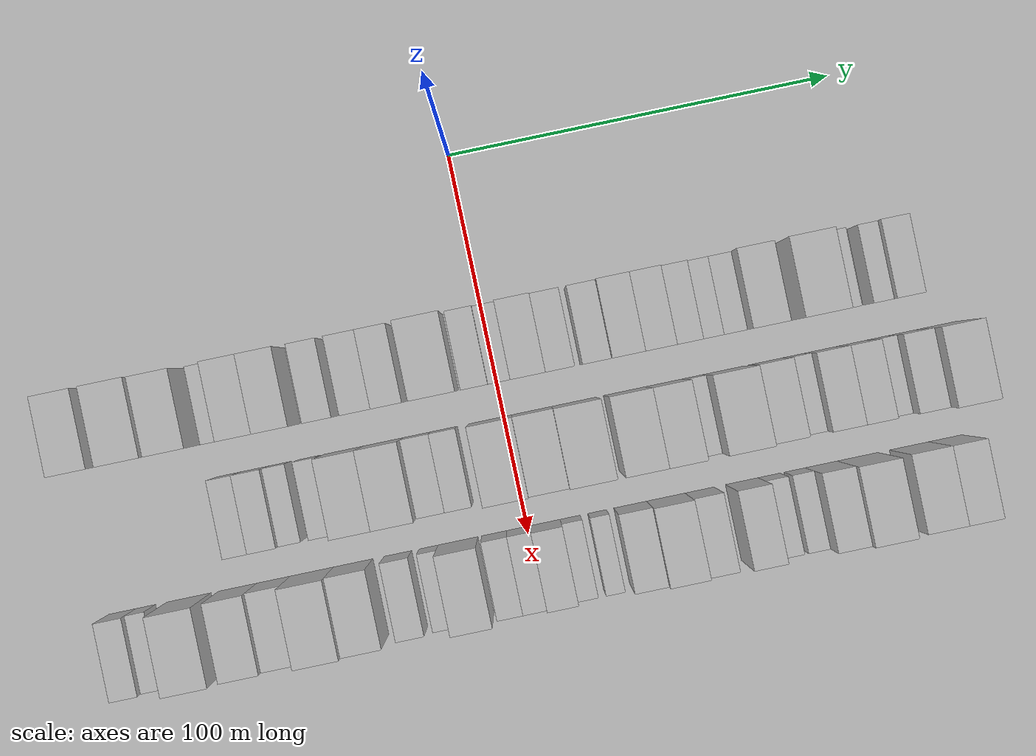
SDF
<sdf version="1.6">
 <world name="default">
  <include><name>ground_plane_1</name><uri>model://HANNAS_ground_plane</uri></include>
  <include>
   <name>ground_plane_2</name>
   <uri>model://HANNAS_ground_plane</uri>
   <pose>100 0 0  0 0 0</pose>
  </include>
  <model name="building_27">
   <static>1</static>
   <pose>50.0000 -106.2114 0 0.000000 0.000000 0.000000</pose>
   <link name="link">
    <pose>0 0 12.00 0 0 0</pose>
    <collision name="collision"><geometry><box><size>20.0000 10.0640 24.0000</size></box></geometry></collision>
    <visual name="visual">
     <cast_shadows>0</cast_shadows>
     <geometry><box><size>20.0000 10.0640 24.0000</size></box></geometry>
     <material>
      <script>
       <uri>model://HANNAS_wall/materials/scripts</uri>
       <uri>model://HANNAS_wall/materials/textures</uri>
       <name>vrc/HANNAS_wall</name>
      </script>
     </material>
    </visual>
   </link>
  </model>
  <model name="building_28">
   <static>1</static>
   <pose>50.0000 -93.5973 0 0.000000 0.000000 0.000000</pose>
   <link name="link">
    <pose>0 0 12.00 0 0 0</pose>
    <collision name="collision"><geometry><box><size>20.0000 11.1640 24.0000</size></box></geometry></collision>
    <visual name="visual">
     <cast_shadows>0</cast_shadows>
     <geometry><box><size>20.0000 11.1640 24.0000</size></box></geometry>
     <material>
      <script>
       <uri>model://HANNAS_wall/materials/scripts</uri>
       <uri>model://HANNAS_wall/materials/textures</uri>
       <name>vrc/HANNAS_wall</name>
      </script>
     </material>
    </visual>
   </link>
  </model>
  <model name="building_29">
   <static>1</static>
   <pose>50.0000 -82.8257 0 0.000000 0.000000 0.000000</pose>
   <link name="link">
    <pose>0 0 10.50 0 0 0</pose>
    <collision name="collision"><geometry><box><size>20.0000 10.3791 21.0000</size></box></geometry></collision>
    <visual name="visual">
     <cast_shadows>0</cast_shadows>
     <geometry><box><size>20.0000 10.3791 21.0000</size></box></geometry>
     <material>
      <script>
       <uri>model://HANNAS_wall/materials/scripts</uri>
       <uri>model://HANNAS_wall/materials/textures</uri>
       <name>vrc/HANNAS_wall</name>
      </script>
     </material>
    </visual>
   </link>
  </model>
  <model name="building_30">
   <static>1</static>
   <pose>50.0000 -72.8177 0 0.000000 0.000000 0.000000</pose>
   <link name="link">
    <pose>0 0 6.00 0 0 0</pose>
    <collision name="collision"><geometry><box><size>20.0000 5.6370 12.0000</size></box></geometry></collision>
    <visual name="visual">
     <cast_shadows>0</cast_shadows>
     <geometry><box><size>20.0000 5.6370 12.0000</size></box></geometry>
     <material>
      <script>
       <uri>model://HANNAS_wall/materials/scripts</uri>
       <uri>model://HANNAS_wall/materials/textures</uri>
       <name>vrc/HANNAS_wall</name>
      </script>
     </material>
    </visual>
   </link>
  </model>
  <model name="building_31">
   <static>1</static>
   <pose>50.0000 -65.4718 0 0.000000 0.000000 0.000000</pose>
   <link name="link">
    <pose>0 0 10.50 0 0 0</pose>
    <collision name="collision"><geometry><box><size>20.0000 9.0548 21.0000</size></box></geometry></collision>
    <visual name="visual">
     <cast_shadows>0</cast_shadows>
     <geometry><box><size>20.0000 9.0548 21.0000</size></box></geometry>
     <material>
      <script>
       <uri>model://HANNAS_wall/materials/scripts</uri>
       <uri>model://HANNAS_wall/materials/textures</uri>
       <name>vrc/HANNAS_wall</name>
      </script>
     </material>
    </visual>
   </link>
  </model>
  <model name="building_32">
   <static>1</static>
   <pose>50.0000 -56.3522 0 0.000000 0.000000 0.000000</pose>
   <link name="link">
    <pose>0 0 10.50 0 0 0</pose>
    <collision name="collision"><geometry><box><size>20.0000 9.1843 21.0000</size></box></geometry></collision>
    <visual name="visual">
     <cast_shadows>0</cast_shadows>
     <geometry><box><size>20.0000 9.1843 21.0000</size></box></geometry>
     <material>
      <script>
       <uri>model://HANNAS_wall/materials/scripts</uri>
       <uri>model://HANNAS_wall/materials/textures</uri>
       <name>vrc/HANNAS_wall</name>
      </script>
     </material>
    </visual>
   </link>
  </model>
  <model name="building_33">
   <static>1</static>
   <pose>50.0000 -45.0540 0 0.000000 0.000000 0.000000</pose>
   <link name="link">
    <pose>0 0 9.00 0 0 0</pose>
    <collision name="collision"><geometry><box><size>20.0000 7.4122 18.0000</size></box></geometry></collision>
    <visual name="visual">
     <cast_shadows>0</cast_shadows>
     <geometry><box><size>20.0000 7.4122 18.0000</size></box></geometry>
     <material>
      <script>
       <uri>model://HANNAS_wall/materials/scripts</uri>
       <uri>model://HANNAS_wall/materials/textures</uri>
       <name>vrc/HANNAS_wall</name>
      </script>
     </material>
    </visual>
   </link>
  </model>
  <model name="building_34">
   <static>1</static>
   <pose>50.0000 -35.4445 0 0.000000 0.000000 0.000000</pose>
   <link name="link">
    <pose>0 0 9.00 0 0 0</pose>
    <collision name="collision"><geometry><box><size>20.0000 7.8068 18.0000</size></box></geometry></collision>
    <visual name="visual">
     <cast_shadows>0</cast_shadows>
     <geometry><box><size>20.0000 7.8068 18.0000</size></box></geometry>
     <material>
      <script>
       <uri>model://HANNAS_wall/materials/scripts</uri>
       <uri>model://HANNAS_wall/materials/textures</uri>
       <name>vrc/HANNAS_wall</name>
      </script>
     </material>
    </visual>
   </link>
  </model>
  <model name="building_35">
   <static>1</static>
   <pose>50.0000 -27.5929 0 0.000000 0.000000 0.000000</pose>
   <link name="link">
    <pose>0 0 9.00 0 0 0</pose>
    <collision name="collision"><geometry><box><size>20.0000 7.8964 18.0000</size></box></geometry></collision>
    <visual name="visual">
     <cast_shadows>0</cast_shadows>
     <geometry><box><size>20.0000 7.8964 18.0000</size></box></geometry>
     <material>
      <script>
       <uri>model://HANNAS_wall/materials/scripts</uri>
       <uri>model://HANNAS_wall/materials/textures</uri>
       <name>vrc/HANNAS_wall</name>
      </script>
     </material>
    </visual>
   </link>
  </model>
  <model name="building_36">
   <static>1</static>
   <pose>50.0000 -15.8348 0 0.000000 0.000000 0.000000</pose>
   <link name="link">
    <pose>0 0 12.00 0 0 0</pose>
    <collision name="collision"><geometry><box><size>20.0000 11.6198 24.0000</size></box></geometry></collision>
    <visual name="visual">
     <cast_shadows>0</cast_shadows>
     <geometry><box><size>20.0000 11.6198 24.0000</size></box></geometry>
     <material>
      <script>
       <uri>model://HANNAS_wall/materials/scripts</uri>
       <uri>model://HANNAS_wall/materials/textures</uri>
       <name>vrc/HANNAS_wall</name>
      </script>
     </material>
    </visual>
   </link>
  </model>
  <model name="building_37">
   <static>1</static>
   <pose>50.0000 -5.5532 0 0.000000 0.000000 0.000000</pose>
   <link name="link">
    <pose>0 0 7.50 0 0 0</pose>
    <collision name="collision"><geometry><box><size>20.0000 6.9434 15.0000</size></box></geometry></collision>
    <visual name="visual">
     <cast_shadows>0</cast_shadows>
     <geometry><box><size>20.0000 6.9434 15.0000</size></box></geometry>
     <material>
      <script>
       <uri>model://HANNAS_wall/materials/scripts</uri>
       <uri>model://HANNAS_wall/materials/textures</uri>
       <name>vrc/HANNAS_wall</name>
      </script>
     </material>
    </visual>
   </link>
  </model>
  <model name="building_38">
   <static>1</static>
   <pose>50.0000 0.7761 0 0.000000 0.000000 0.000000</pose>
   <link name="link">
    <pose>0 0 6.00 0 0 0</pose>
    <collision name="collision"><geometry><box><size>20.0000 5.7152 12.0000</size></box></geometry></collision>
    <visual name="visual">
     <cast_shadows>0</cast_shadows>
     <geometry><box><size>20.0000 5.7152 12.0000</size></box></geometry>
     <material>
      <script>
       <uri>model://HANNAS_wall/materials/scripts</uri>
       <uri>model://HANNAS_wall/materials/textures</uri>
       <name>vrc/HANNAS_wall</name>
      </script>
     </material>
    </visual>
   </link>
  </model>
  <model name="building_39">
   <static>1</static>
   <pose>50.0000 8.0830 0 0.000000 0.000000 0.000000</pose>
   <link name="link">
    <pose>0 0 9.00 0 0 0</pose>
    <collision name="collision"><geometry><box><size>20.0000 8.8988 18.0000</size></box></geometry></collision>
    <visual name="visual">
     <cast_shadows>0</cast_shadows>
     <geometry><box><size>20.0000 8.8988 18.0000</size></box></geometry>
     <material>
      <script>
       <uri>model://HANNAS_wall/materials/scripts</uri>
       <uri>model://HANNAS_wall/materials/textures</uri>
       <name>vrc/HANNAS_wall</name>
      </script>
     </material>
    </visual>
   </link>
  </model>
  <model name="building_40">
   <static>1</static>
   <pose>50.0000 16.2663 0 0.000000 0.000000 0.000000</pose>
   <link name="link">
    <pose>0 0 7.50 0 0 0</pose>
    <collision name="collision"><geometry><box><size>20.0000 7.4677 15.0000</size></box></geometry></collision>
    <visual name="visual">
     <cast_shadows>0</cast_shadows>
     <geometry><box><size>20.0000 7.4677 15.0000</size></box></geometry>
     <material>
      <script>
       <uri>model://HANNAS_wall/materials/scripts</uri>
       <uri>model://HANNAS_wall/materials/textures</uri>
       <name>vrc/HANNAS_wall</name>
      </script>
     </material>
    </visual>
   </link>
  </model>
  <model name="building_41">
   <static>1</static>
   <pose>50.0000 25.6822 0 0.000000 0.000000 0.000000</pose>
   <link name="link">
    <pose>0 0 7.50 0 0 0</pose>
    <collision name="collision"><geometry><box><size>20.0000 7.3641 15.0000</size></box></geometry></collision>
    <visual name="visual">
     <cast_shadows>0</cast_shadows>
     <geometry><box><size>20.0000 7.3641 15.0000</size></box></geometry>
     <material>
      <script>
       <uri>model://HANNAS_wall/materials/scripts</uri>
       <uri>model://HANNAS_wall/materials/textures</uri>
       <name>vrc/HANNAS_wall</name>
      </script>
     </material>
    </visual>
   </link>
  </model>
  <model name="building_42">
   <static>1</static>
   <pose>50.0000 33.5626 0 0.000000 0.000000 0.000000</pose>
   <link name="link">
    <pose>0 0 9.00 0 0 0</pose>
    <collision name="collision"><geometry><box><size>20.0000 8.3966 18.0000</size></box></geometry></collision>
    <visual name="visual">
     <cast_shadows>0</cast_shadows>
     <geometry><box><size>20.0000 8.3966 18.0000</size></box></geometry>
     <material>
      <script>
       <uri>model://HANNAS_wall/materials/scripts</uri>
       <uri>model://HANNAS_wall/materials/textures</uri>
       <name>vrc/HANNAS_wall</name>
      </script>
     </material>
    </visual>
   </link>
  </model>
  <model name="building_43">
   <static>1</static>
   <pose>50.0000 41.7393 0 0.000000 0.000000 0.000000</pose>
   <link name="link">
    <pose>0 0 9.00 0 0 0</pose>
    <collision name="collision"><geometry><box><size>20.0000 7.9568 18.0000</size></box></geometry></collision>
    <visual name="visual">
     <cast_shadows>0</cast_shadows>
     <geometry><box><size>20.0000 7.9568 18.0000</size></box></geometry>
     <material>
      <script>
       <uri>model://HANNAS_wall/materials/scripts</uri>
       <uri>model://HANNAS_wall/materials/textures</uri>
       <name>vrc/HANNAS_wall</name>
      </script>
     </material>
    </visual>
   </link>
  </model>
  <model name="building_44">
   <static>1</static>
   <pose>50.0000 49.2148 0 0.000000 0.000000 0.000000</pose>
   <link name="link">
    <pose>0 0 7.50 0 0 0</pose>
    <collision name="collision"><geometry><box><size>20.0000 6.9943 15.0000</size></box></geometry></collision>
    <visual name="visual">
     <cast_shadows>0</cast_shadows>
     <geometry><box><size>20.0000 6.9943 15.0000</size></box></geometry>
     <material>
      <script>
       <uri>model://HANNAS_wall/materials/scripts</uri>
       <uri>model://HANNAS_wall/materials/textures</uri>
       <name>vrc/HANNAS_wall</name>
      </script>
     </material>
    </visual>
   </link>
  </model>
  <model name="building_45">
   <static>1</static>
   <pose>50.0000 55.5354 0 0.000000 0.000000 0.000000</pose>
   <link name="link">
    <pose>0 0 6.00 0 0 0</pose>
    <collision name="collision"><geometry><box><size>20.0000 5.6469 12.0000</size></box></geometry></collision>
    <visual name="visual">
     <cast_shadows>0</cast_shadows>
     <geometry><box><size>20.0000 5.6469 12.0000</size></box></geometry>
     <material>
      <script>
       <uri>model://HANNAS_wall/materials/scripts</uri>
       <uri>model://HANNAS_wall/materials/textures</uri>
       <name>vrc/HANNAS_wall</name>
      </script>
     </material>
    </visual>
   </link>
  </model>
  <model name="building_46">
   <static>1</static>
   <pose>50.0000 61.3290 0 0.000000 0.000000 0.000000</pose>
   <link name="link">
    <pose>0 0 6.00 0 0 0</pose>
    <collision name="collision"><geometry><box><size>20.0000 5.9403 12.0000</size></box></geometry></collision>
    <visual name="visual">
     <cast_shadows>0</cast_shadows>
     <geometry><box><size>20.0000 5.9403 12.0000</size></box></geometry>
     <material>
      <script>
       <uri>model://HANNAS_wall/materials/scripts</uri>
       <uri>model://HANNAS_wall/materials/textures</uri>
       <name>vrc/HANNAS_wall</name>
      </script>
     </material>
    </visual>
   </link>
  </model>
  <model name="building_47">
   <static>1</static>
   <pose>50.0000 69.0229 0 0.000000 0.000000 0.000000</pose>
   <link name="link">
    <pose>0 0 10.50 0 0 0</pose>
    <collision name="collision"><geometry><box><size>20.0000 9.4476 21.0000</size></box></geometry></collision>
    <visual name="visual">
     <cast_shadows>0</cast_shadows>
     <geometry><box><size>20.0000 9.4476 21.0000</size></box></geometry>
     <material>
      <script>
       <uri>model://HANNAS_wall/materials/scripts</uri>
       <uri>model://HANNAS_wall/materials/textures</uri>
       <name>vrc/HANNAS_wall</name>
      </script>
     </material>
    </visual>
   </link>
  </model>
  <model name="building_48">
   <static>1</static>
   <pose>50.0000 82.5498 0 0.000000 0.000000 0.000000</pose>
   <link name="link">
    <pose>0 0 12.00 0 0 0</pose>
    <collision name="collision"><geometry><box><size>20.0000 11.6061 24.0000</size></box></geometry></collision>
    <visual name="visual">
     <cast_shadows>0</cast_shadows>
     <geometry><box><size>20.0000 11.6061 24.0000</size></box></geometry>
     <material>
      <script>
       <uri>model://HANNAS_wall/materials/scripts</uri>
       <uri>model://HANNAS_wall/materials/textures</uri>
       <name>vrc/HANNAS_wall</name>
      </script>
     </material>
    </visual>
   </link>
  </model>
  <model name="building_49">
   <static>1</static>
   <pose>50.0000 90.9931 0 0.000000 0.000000 0.000000</pose>
   <link name="link">
    <pose>0 0 6.00 0 0 0</pose>
    <collision name="collision"><geometry><box><size>20.0000 5.2807 12.0000</size></box></geometry></collision>
    <visual name="visual">
     <cast_shadows>0</cast_shadows>
     <geometry><box><size>20.0000 5.2807 12.0000</size></box></geometry>
     <material>
      <script>
       <uri>model://HANNAS_wall/materials/scripts</uri>
       <uri>model://HANNAS_wall/materials/textures</uri>
       <name>vrc/HANNAS_wall</name>
      </script>
     </material>
    </visual>
   </link>
  </model>
  <model name="building_50">
   <static>1</static>
   <pose>50.0000 99.2184 0 0.000000 0.000000 0.000000</pose>
   <link name="link">
    <pose>0 0 6.00 0 0 0</pose>
    <collision name="collision"><geometry><box><size>20.0000 5.1699 12.0000</size></box></geometry></collision>
    <visual name="visual">
     <cast_shadows>0</cast_shadows>
     <geometry><box><size>20.0000 5.1699 12.0000</size></box></geometry>
     <material>
      <script>
       <uri>model://HANNAS_wall/materials/scripts</uri>
       <uri>model://HANNAS_wall/materials/textures</uri>
       <name>vrc/HANNAS_wall</name>
      </script>
     </material>
    </visual>
   </link>
  </model>
  <model name="building_51">
   <static>1</static>
   <pose>50.0000 105.4451 0 0.000000 0.000000 0.000000</pose>
   <link name="link">
    <pose>0 0 7.50 0 0 0</pose>
    <collision name="collision"><geometry><box><size>20.0000 7.2834 15.0000</size></box></geometry></collision>
    <visual name="visual">
     <cast_shadows>0</cast_shadows>
     <geometry><box><size>20.0000 7.2834 15.0000</size></box></geometry>
     <material>
      <script>
       <uri>model://HANNAS_wall/materials/scripts</uri>
       <uri>model://HANNAS_wall/materials/textures</uri>
       <name>vrc/HANNAS_wall</name>
      </script>
     </material>
    </visual>
   </link>
  </model>
  <model name="building_103">
   <static>1</static>
   <pose>79.0000 -72.3632 0 0.000000 0.000000 0.000000</pose>
   <link name="link">
    <pose>0 0 7.50 0 0 0</pose>
    <collision name="collision"><geometry><box><size>20.0000 6.2579 15.0000</size></box></geometry></collision>
    <visual name="visual">
     <cast_shadows>0</cast_shadows>
     <geometry><box><size>20.0000 6.2579 15.0000</size></box></geometry>
     <material>
      <script>
       <uri>model://HANNAS_wall/materials/scripts</uri>
       <uri>model://HANNAS_wall/materials/textures</uri>
       <name>vrc/HANNAS_wall</name>
      </script>
     </material>
    </visual>
   </link>
  </model>
  <model name="building_104">
   <static>1</static>
   <pose>79.0000 -65.5783 0 0.000000 0.000000 0.000000</pose>
   <link name="link">
    <pose>0 0 7.50 0 0 0</pose>
    <collision name="collision"><geometry><box><size>20.0000 7.3119 15.0000</size></box></geometry></collision>
    <visual name="visual">
     <cast_shadows>0</cast_shadows>
     <geometry><box><size>20.0000 7.3119 15.0000</size></box></geometry>
     <material>
      <script>
       <uri>model://HANNAS_wall/materials/scripts</uri>
       <uri>model://HANNAS_wall/materials/textures</uri>
       <name>vrc/HANNAS_wall</name>
      </script>
     </material>
    </visual>
   </link>
  </model>
  <model name="building_105">
   <static>1</static>
   <pose>79.0000 -59.0094 0 0.000000 0.000000 0.000000</pose>
   <link name="link">
    <pose>0 0 6.00 0 0 0</pose>
    <collision name="collision"><geometry><box><size>20.0000 5.8259 12.0000</size></box></geometry></collision>
    <visual name="visual">
     <cast_shadows>0</cast_shadows>
     <geometry><box><size>20.0000 5.8259 12.0000</size></box></geometry>
     <material>
      <script>
       <uri>model://HANNAS_wall/materials/scripts</uri>
       <uri>model://HANNAS_wall/materials/textures</uri>
       <name>vrc/HANNAS_wall</name>
      </script>
     </material>
    </visual>
   </link>
  </model>
  <model name="building_106">
   <static>1</static>
   <pose>79.0000 -51.1900 0 0.000000 0.000000 0.000000</pose>
   <link name="link">
    <pose>0 0 6.00 0 0 0</pose>
    <collision name="collision"><geometry><box><size>20.0000 5.8129 12.0000</size></box></geometry></collision>
    <visual name="visual">
     <cast_shadows>0</cast_shadows>
     <geometry><box><size>20.0000 5.8129 12.0000</size></box></geometry>
     <material>
      <script>
       <uri>model://HANNAS_wall/materials/scripts</uri>
       <uri>model://HANNAS_wall/materials/textures</uri>
       <name>vrc/HANNAS_wall</name>
      </script>
     </material>
    </visual>
   </link>
  </model>
  <model name="building_107">
   <static>1</static>
   <pose>79.0000 -42.1295 0 0.000000 0.000000 0.000000</pose>
   <link name="link">
    <pose>0 0 12.00 0 0 0</pose>
    <collision name="collision"><geometry><box><size>20.0000 10.3080 24.0000</size></box></geometry></collision>
    <visual name="visual">
     <cast_shadows>0</cast_shadows>
     <geometry><box><size>20.0000 10.3080 24.0000</size></box></geometry>
     <material>
      <script>
       <uri>model://HANNAS_wall/materials/scripts</uri>
       <uri>model://HANNAS_wall/materials/textures</uri>
       <name>vrc/HANNAS_wall</name>
      </script>
     </material>
    </visual>
   </link>
  </model>
  <model name="building_108">
   <static>1</static>
   <pose>79.0000 -31.6559 0 0.000000 0.000000 0.000000</pose>
   <link name="link">
    <pose>0 0 12.00 0 0 0</pose>
    <collision name="collision"><geometry><box><size>20.0000 10.6393 24.0000</size></box></geometry></collision>
    <visual name="visual">
     <cast_shadows>0</cast_shadows>
     <geometry><box><size>20.0000 10.6393 24.0000</size></box></geometry>
     <material>
      <script>
       <uri>model://HANNAS_wall/materials/scripts</uri>
       <uri>model://HANNAS_wall/materials/textures</uri>
       <name>vrc/HANNAS_wall</name>
      </script>
     </material>
    </visual>
   </link>
  </model>
  <model name="building_109">
   <static>1</static>
   <pose>79.0000 -22.7290 0 0.000000 0.000000 0.000000</pose>
   <link name="link">
    <pose>0 0 7.50 0 0 0</pose>
    <collision name="collision"><geometry><box><size>20.0000 7.2145 15.0000</size></box></geometry></collision>
    <visual name="visual">
     <cast_shadows>0</cast_shadows>
     <geometry><box><size>20.0000 7.2145 15.0000</size></box></geometry>
     <material>
      <script>
       <uri>model://HANNAS_wall/materials/scripts</uri>
       <uri>model://HANNAS_wall/materials/textures</uri>
       <name>vrc/HANNAS_wall</name>
      </script>
     </material>
    </visual>
   </link>
  </model>
  <model name="building_110">
   <static>1</static>
   <pose>79.0000 -15.6915 0 0.000000 0.000000 0.000000</pose>
   <link name="link">
    <pose>0 0 7.50 0 0 0</pose>
    <collision name="collision"><geometry><box><size>20.0000 6.8606 15.0000</size></box></geometry></collision>
    <visual name="visual">
     <cast_shadows>0</cast_shadows>
     <geometry><box><size>20.0000 6.8606 15.0000</size></box></geometry>
     <material>
      <script>
       <uri>model://HANNAS_wall/materials/scripts</uri>
       <uri>model://HANNAS_wall/materials/textures</uri>
       <name>vrc/HANNAS_wall</name>
      </script>
     </material>
    </visual>
   </link>
  </model>
  <model name="building_111">
   <static>1</static>
   <pose>79.0000 -3.5700 0 0.000000 0.000000 0.000000</pose>
   <link name="link">
    <pose>0 0 12.00 0 0 0</pose>
    <collision name="collision"><geometry><box><size>20.0000 11.3823 24.0000</size></box></geometry></collision>
    <visual name="visual">
     <cast_shadows>0</cast_shadows>
     <geometry><box><size>20.0000 11.3823 24.0000</size></box></geometry>
     <material>
      <script>
       <uri>model://HANNAS_wall/materials/scripts</uri>
       <uri>model://HANNAS_wall/materials/textures</uri>
       <name>vrc/HANNAS_wall</name>
      </script>
     </material>
    </visual>
   </link>
  </model>
  <model name="building_112">
   <static>1</static>
   <pose>79.0000 7.2478 0 0.000000 0.000000 0.000000</pose>
   <link name="link">
    <pose>0 0 10.50 0 0 0</pose>
    <collision name="collision"><geometry><box><size>20.0000 10.2533 21.0000</size></box></geometry></collision>
    <visual name="visual">
     <cast_shadows>0</cast_shadows>
     <geometry><box><size>20.0000 10.2533 21.0000</size></box></geometry>
     <material>
      <script>
       <uri>model://HANNAS_wall/materials/scripts</uri>
       <uri>model://HANNAS_wall/materials/textures</uri>
       <name>vrc/HANNAS_wall</name>
      </script>
     </material>
    </visual>
   </link>
  </model>
  <model name="building_113">
   <static>1</static>
   <pose>79.0000 18.3056 0 0.000000 0.000000 0.000000</pose>
   <link name="link">
    <pose>0 0 12.00 0 0 0</pose>
    <collision name="collision"><geometry><box><size>20.0000 11.8623 24.0000</size></box></geometry></collision>
    <visual name="visual">
     <cast_shadows>0</cast_shadows>
     <geometry><box><size>20.0000 11.8623 24.0000</size></box></geometry>
     <material>
      <script>
       <uri>model://HANNAS_wall/materials/scripts</uri>
       <uri>model://HANNAS_wall/materials/textures</uri>
       <name>vrc/HANNAS_wall</name>
      </script>
     </material>
    </visual>
   </link>
  </model>
  <model name="building_114">
   <static>1</static>
   <pose>79.0000 31.6456 0 0.000000 0.000000 0.000000</pose>
   <link name="link">
    <pose>0 0 12.00 0 0 0</pose>
    <collision name="collision"><geometry><box><size>20.0000 10.8178 24.0000</size></box></geometry></collision>
    <visual name="visual">
     <cast_shadows>0</cast_shadows>
     <geometry><box><size>20.0000 10.8178 24.0000</size></box></geometry>
     <material>
      <script>
       <uri>model://HANNAS_wall/materials/scripts</uri>
       <uri>model://HANNAS_wall/materials/textures</uri>
       <name>vrc/HANNAS_wall</name>
      </script>
     </material>
    </visual>
   </link>
  </model>
  <model name="building_115">
   <static>1</static>
   <pose>79.0000 41.8683 0 0.000000 0.000000 0.000000</pose>
   <link name="link">
    <pose>0 0 12.00 0 0 0</pose>
    <collision name="collision"><geometry><box><size>20.0000 9.6275 24.0000</size></box></geometry></collision>
    <visual name="visual">
     <cast_shadows>0</cast_shadows>
     <geometry><box><size>20.0000 9.6275 24.0000</size></box></geometry>
     <material>
      <script>
       <uri>model://HANNAS_wall/materials/scripts</uri>
       <uri>model://HANNAS_wall/materials/textures</uri>
       <name>vrc/HANNAS_wall</name>
      </script>
     </material>
    </visual>
   </link>
  </model>
  <model name="building_116">
   <static>1</static>
   <pose>79.0000 49.2413 0 0.000000 0.000000 0.000000</pose>
   <link name="link">
    <pose>0 0 6.00 0 0 0</pose>
    <collision name="collision"><geometry><box><size>20.0000 5.1186 12.0000</size></box></geometry></collision>
    <visual name="visual">
     <cast_shadows>0</cast_shadows>
     <geometry><box><size>20.0000 5.1186 12.0000</size></box></geometry>
     <material>
      <script>
       <uri>model://HANNAS_wall/materials/scripts</uri>
       <uri>model://HANNAS_wall/materials/textures</uri>
       <name>vrc/HANNAS_wall</name>
      </script>
     </material>
    </visual>
   </link>
  </model>
  <model name="building_117">
   <static>1</static>
   <pose>79.0000 57.6113 0 0.000000 0.000000 0.000000</pose>
   <link name="link">
    <pose>0 0 12.00 0 0 0</pose>
    <collision name="collision"><geometry><box><size>20.0000 11.6214 24.0000</size></box></geometry></collision>
    <visual name="visual">
     <cast_shadows>0</cast_shadows>
     <geometry><box><size>20.0000 11.6214 24.0000</size></box></geometry>
     <material>
      <script>
       <uri>model://HANNAS_wall/materials/scripts</uri>
       <uri>model://HANNAS_wall/materials/textures</uri>
       <name>vrc/HANNAS_wall</name>
      </script>
     </material>
    </visual>
   </link>
  </model>
  <model name="building_118">
   <static>1</static>
   <pose>79.0000 68.7601 0 0.000000 0.000000 0.000000</pose>
   <link name="link">
    <pose>0 0 9.00 0 0 0</pose>
    <collision name="collision"><geometry><box><size>20.0000 8.6761 18.0000</size></box></geometry></collision>
    <visual name="visual">
     <cast_shadows>0</cast_shadows>
     <geometry><box><size>20.0000 8.6761 18.0000</size></box></geometry>
     <material>
      <script>
       <uri>model://HANNAS_wall/materials/scripts</uri>
       <uri>model://HANNAS_wall/materials/textures</uri>
       <name>vrc/HANNAS_wall</name>
      </script>
     </material>
    </visual>
   </link>
  </model>
  <model name="building_119">
   <static>1</static>
   <pose>79.0000 75.9216 0 0.000000 0.000000 0.000000</pose>
   <link name="link">
    <pose>0 0 6.00 0 0 0</pose>
    <collision name="collision"><geometry><box><size>20.0000 5.6469 12.0000</size></box></geometry></collision>
    <visual name="visual">
     <cast_shadows>0</cast_shadows>
     <geometry><box><size>20.0000 5.6469 12.0000</size></box></geometry>
     <material>
      <script>
       <uri>model://HANNAS_wall/materials/scripts</uri>
       <uri>model://HANNAS_wall/materials/textures</uri>
       <name>vrc/HANNAS_wall</name>
      </script>
     </material>
    </visual>
   </link>
  </model>
  <model name="building_120">
   <static>1</static>
   <pose>79.0000 83.0606 0 0.000000 0.000000 0.000000</pose>
   <link name="link">
    <pose>0 0 9.00 0 0 0</pose>
    <collision name="collision"><geometry><box><size>20.0000 8.6313 18.0000</size></box></geometry></collision>
    <visual name="visual">
     <cast_shadows>0</cast_shadows>
     <geometry><box><size>20.0000 8.6313 18.0000</size></box></geometry>
     <material>
      <script>
       <uri>model://HANNAS_wall/materials/scripts</uri>
       <uri>model://HANNAS_wall/materials/textures</uri>
       <name>vrc/HANNAS_wall</name>
      </script>
     </material>
    </visual>
   </link>
  </model>
  <model name="building_121">
   <static>1</static>
   <pose>79.0000 91.2915 0 0.000000 0.000000 0.000000</pose>
   <link name="link">
    <pose>0 0 9.00 0 0 0</pose>
    <collision name="collision"><geometry><box><size>20.0000 7.8305 18.0000</size></box></geometry></collision>
    <visual name="visual">
     <cast_shadows>0</cast_shadows>
     <geometry><box><size>20.0000 7.8305 18.0000</size></box></geometry>
     <material>
      <script>
       <uri>model://HANNAS_wall/materials/scripts</uri>
       <uri>model://HANNAS_wall/materials/textures</uri>
       <name>vrc/HANNAS_wall</name>
      </script>
     </material>
    </visual>
   </link>
  </model>
  <model name="building_122">
   <static>1</static>
   <pose>79.0000 97.8923 0 0.000000 0.000000 0.000000</pose>
   <link name="link">
    <pose>0 0 6.00 0 0 0</pose>
    <collision name="collision"><geometry><box><size>20.0000 5.3712 12.0000</size></box></geometry></collision>
    <visual name="visual">
     <cast_shadows>0</cast_shadows>
     <geometry><box><size>20.0000 5.3712 12.0000</size></box></geometry>
     <material>
      <script>
       <uri>model://HANNAS_wall/materials/scripts</uri>
       <uri>model://HANNAS_wall/materials/textures</uri>
       <name>vrc/HANNAS_wall</name>
      </script>
     </material>
    </visual>
   </link>
  </model>
  <model name="building_123">
   <static>1</static>
   <pose>79.0000 104.4703 0 0.000000 0.000000 0.000000</pose>
   <link name="link">
    <pose>0 0 9.00 0 0 0</pose>
    <collision name="collision"><geometry><box><size>20.0000 7.7848 18.0000</size></box></geometry></collision>
    <visual name="visual">
     <cast_shadows>0</cast_shadows>
     <geometry><box><size>20.0000 7.7848 18.0000</size></box></geometry>
     <material>
      <script>
       <uri>model://HANNAS_wall/materials/scripts</uri>
       <uri>model://HANNAS_wall/materials/textures</uri>
       <name>vrc/HANNAS_wall</name>
      </script>
     </material>
    </visual>
   </link>
  </model>
  <model name="building_124">
   <static>1</static>
   <pose>79.0000 113.7987 0 0.000000 0.000000 0.000000</pose>
   <link name="link">
    <pose>0 0 12.00 0 0 0</pose>
    <collision name="collision"><geometry><box><size>20.0000 10.8720 24.0000</size></box></geometry></collision>
    <visual name="visual">
     <cast_shadows>0</cast_shadows>
     <geometry><box><size>20.0000 10.8720 24.0000</size></box></geometry>
     <material>
      <script>
       <uri>model://HANNAS_wall/materials/scripts</uri>
       <uri>model://HANNAS_wall/materials/textures</uri>
       <name>vrc/HANNAS_wall</name>
      </script>
     </material>
    </visual>
   </link>
  </model>
  <model name="building_168">
   <static>1</static>
   <pose>108.0000 -106.6821 0 0.000000 0.000000 0.000000</pose>
   <link name="link">
    <pose>0 0 7.50 0 0 0</pose>
    <collision name="collision"><geometry><box><size>20.0000 7.2102 15.0000</size></box></geometry></collision>
    <visual name="visual">
     <cast_shadows>0</cast_shadows>
     <geometry><box><size>20.0000 7.2102 15.0000</size></box></geometry>
     <material>
      <script>
       <uri>model://HANNAS_wall/materials/scripts</uri>
       <uri>model://HANNAS_wall/materials/textures</uri>
       <name>vrc/HANNAS_wall</name>
      </script>
     </material>
    </visual>
   </link>
  </model>
  <model name="building_169">
   <static>1</static>
   <pose>108.0000 -100.5442 0 0.000000 0.000000 0.000000</pose>
   <link name="link">
    <pose>0 0 6.00 0 0 0</pose>
    <collision name="collision"><geometry><box><size>20.0000 5.0657 12.0000</size></box></geometry></collision>
    <visual name="visual">
     <cast_shadows>0</cast_shadows>
     <geometry><box><size>20.0000 5.0657 12.0000</size></box></geometry>
     <material>
      <script>
       <uri>model://HANNAS_wall/materials/scripts</uri>
       <uri>model://HANNAS_wall/materials/textures</uri>
       <name>vrc/HANNAS_wall</name>
      </script>
     </material>
    </visual>
   </link>
  </model>
  <model name="building_170">
   <static>1</static>
   <pose>108.0000 -89.1897 0 0.000000 0.000000 0.000000</pose>
   <link name="link">
    <pose>0 0 12.00 0 0 0</pose>
    <collision name="collision"><geometry><box><size>20.0000 11.6433 24.0000</size></box></geometry></collision>
    <visual name="visual">
     <cast_shadows>0</cast_shadows>
     <geometry><box><size>20.0000 11.6433 24.0000</size></box></geometry>
     <material>
      <script>
       <uri>model://HANNAS_wall/materials/scripts</uri>
       <uri>model://HANNAS_wall/materials/textures</uri>
       <name>vrc/HANNAS_wall</name>
      </script>
     </material>
    </visual>
   </link>
  </model>
  <model name="building_171">
   <static>1</static>
   <pose>108.0000 -76.3008 0 0.000000 0.000000 0.000000</pose>
   <link name="link">
    <pose>0 0 10.50 0 0 0</pose>
    <collision name="collision"><geometry><box><size>20.0000 10.1346 21.0000</size></box></geometry></collision>
    <visual name="visual">
     <cast_shadows>0</cast_shadows>
     <geometry><box><size>20.0000 10.1346 21.0000</size></box></geometry>
     <material>
      <script>
       <uri>model://HANNAS_wall/materials/scripts</uri>
       <uri>model://HANNAS_wall/materials/textures</uri>
       <name>vrc/HANNAS_wall</name>
      </script>
     </material>
    </visual>
   </link>
  </model>
  <model name="building_172">
   <static>1</static>
   <pose>108.0000 -66.8131 0 0.000000 0.000000 0.000000</pose>
   <link name="link">
    <pose>0 0 9.00 0 0 0</pose>
    <collision name="collision"><geometry><box><size>20.0000 8.8408 18.0000</size></box></geometry></collision>
    <visual name="visual">
     <cast_shadows>0</cast_shadows>
     <geometry><box><size>20.0000 8.8408 18.0000</size></box></geometry>
     <material>
      <script>
       <uri>model://HANNAS_wall/materials/scripts</uri>
       <uri>model://HANNAS_wall/materials/textures</uri>
       <name>vrc/HANNAS_wall</name>
      </script>
     </material>
    </visual>
   </link>
  </model>
  <model name="building_173">
   <static>1</static>
   <pose>108.0000 -56.6580 0 0.000000 0.000000 0.000000</pose>
   <link name="link">
    <pose>0 0 12.00 0 0 0</pose>
    <collision name="collision"><geometry><box><size>20.0000 11.4695 24.0000</size></box></geometry></collision>
    <visual name="visual">
     <cast_shadows>0</cast_shadows>
     <geometry><box><size>20.0000 11.4695 24.0000</size></box></geometry>
     <material>
      <script>
       <uri>model://HANNAS_wall/materials/scripts</uri>
       <uri>model://HANNAS_wall/materials/textures</uri>
       <name>vrc/HANNAS_wall</name>
      </script>
     </material>
    </visual>
   </link>
  </model>
  <model name="building_174">
   <static>1</static>
   <pose>108.0000 -45.7812 0 0.000000 0.000000 0.000000</pose>
   <link name="link">
    <pose>0 0 10.50 0 0 0</pose>
    <collision name="collision"><geometry><box><size>20.0000 10.2841 21.0000</size></box></geometry></collision>
    <visual name="visual">
     <cast_shadows>0</cast_shadows>
     <geometry><box><size>20.0000 10.2841 21.0000</size></box></geometry>
     <material>
      <script>
       <uri>model://HANNAS_wall/materials/scripts</uri>
       <uri>model://HANNAS_wall/materials/textures</uri>
       <name>vrc/HANNAS_wall</name>
      </script>
     </material>
    </visual>
   </link>
  </model>
  <model name="building_175">
   <static>1</static>
   <pose>108.0000 -34.0222 0 0.000000 0.000000 0.000000</pose>
   <link name="link">
    <pose>0 0 7.50 0 0 0</pose>
    <collision name="collision"><geometry><box><size>20.0000 7.2339 15.0000</size></box></geometry></collision>
    <visual name="visual">
     <cast_shadows>0</cast_shadows>
     <geometry><box><size>20.0000 7.2339 15.0000</size></box></geometry>
     <material>
      <script>
       <uri>model://HANNAS_wall/materials/scripts</uri>
       <uri>model://HANNAS_wall/materials/textures</uri>
       <name>vrc/HANNAS_wall</name>
      </script>
     </material>
    </visual>
   </link>
  </model>
  <model name="building_176">
   <static>1</static>
   <pose>108.0000 -25.8975 0 0.000000 0.000000 0.000000</pose>
   <link name="link">
    <pose>0 0 6.00 0 0 0</pose>
    <collision name="collision"><geometry><box><size>20.0000 5.0156 12.0000</size></box></geometry></collision>
    <visual name="visual">
     <cast_shadows>0</cast_shadows>
     <geometry><box><size>20.0000 5.0156 12.0000</size></box></geometry>
     <material>
      <script>
       <uri>model://HANNAS_wall/materials/scripts</uri>
       <uri>model://HANNAS_wall/materials/textures</uri>
       <name>vrc/HANNAS_wall</name>
      </script>
     </material>
    </visual>
   </link>
  </model>
  <model name="building_177">
   <static>1</static>
   <pose>108.0000 -18.1593 0 0.000000 0.000000 0.000000</pose>
   <link name="link">
    <pose>0 0 12.00 0 0 0</pose>
    <collision name="collision"><geometry><box><size>20.0000 10.4608 24.0000</size></box></geometry></collision>
    <visual name="visual">
     <cast_shadows>0</cast_shadows>
     <geometry><box><size>20.0000 10.4608 24.0000</size></box></geometry>
     <material>
      <script>
       <uri>model://HANNAS_wall/materials/scripts</uri>
       <uri>model://HANNAS_wall/materials/textures</uri>
       <name>vrc/HANNAS_wall</name>
      </script>
     </material>
    </visual>
   </link>
  </model>
  <model name="building_178">
   <static>1</static>
   <pose>108.0000 -8.6307 0 0.000000 0.000000 0.000000</pose>
   <link name="link">
    <pose>0 0 7.50 0 0 0</pose>
    <collision name="collision"><geometry><box><size>20.0000 6.5965 15.0000</size></box></geometry></collision>
    <visual name="visual">
     <cast_shadows>0</cast_shadows>
     <geometry><box><size>20.0000 6.5965 15.0000</size></box></geometry>
     <material>
      <script>
       <uri>model://HANNAS_wall/materials/scripts</uri>
       <uri>model://HANNAS_wall/materials/textures</uri>
       <name>vrc/HANNAS_wall</name>
      </script>
     </material>
    </visual>
   </link>
  </model>
  <model name="building_179">
   <static>1</static>
   <pose>108.0000 -2.2721 0 0.000000 0.000000 0.000000</pose>
   <link name="link">
    <pose>0 0 7.50 0 0 0</pose>
    <collision name="collision"><geometry><box><size>20.0000 6.1207 15.0000</size></box></geometry></collision>
    <visual name="visual">
     <cast_shadows>0</cast_shadows>
     <geometry><box><size>20.0000 6.1207 15.0000</size></box></geometry>
     <material>
      <script>
       <uri>model://HANNAS_wall/materials/scripts</uri>
       <uri>model://HANNAS_wall/materials/textures</uri>
       <name>vrc/HANNAS_wall</name>
      </script>
     </material>
    </visual>
   </link>
  </model>
  <model name="building_180">
   <static>1</static>
   <pose>108.0000 4.7487 0 0.000000 0.000000 0.000000</pose>
   <link name="link">
    <pose>0 0 9.00 0 0 0</pose>
    <collision name="collision"><geometry><box><size>20.0000 7.9208 18.0000</size></box></geometry></collision>
    <visual name="visual">
     <cast_shadows>0</cast_shadows>
     <geometry><box><size>20.0000 7.9208 18.0000</size></box></geometry>
     <material>
      <script>
       <uri>model://HANNAS_wall/materials/scripts</uri>
       <uri>model://HANNAS_wall/materials/textures</uri>
       <name>vrc/HANNAS_wall</name>
      </script>
     </material>
    </visual>
   </link>
  </model>
  <model name="building_181">
   <static>1</static>
   <pose>108.0000 11.3419 0 0.000000 0.000000 0.000000</pose>
   <link name="link">
    <pose>0 0 6.00 0 0 0</pose>
    <collision name="collision"><geometry><box><size>20.0000 5.2657 12.0000</size></box></geometry></collision>
    <visual name="visual">
     <cast_shadows>0</cast_shadows>
     <geometry><box><size>20.0000 5.2657 12.0000</size></box></geometry>
     <material>
      <script>
       <uri>model://HANNAS_wall/materials/scripts</uri>
       <uri>model://HANNAS_wall/materials/textures</uri>
       <name>vrc/HANNAS_wall</name>
      </script>
     </material>
    </visual>
   </link>
  </model>
  <model name="building_182">
   <static>1</static>
   <pose>108.0000 18.4282 0 0.000000 0.000000 0.000000</pose>
   <link name="link">
    <pose>0 0 6.00 0 0 0</pose>
    <collision name="collision"><geometry><box><size>20.0000 4.9069 12.0000</size></box></geometry></collision>
    <visual name="visual">
     <cast_shadows>0</cast_shadows>
     <geometry><box><size>20.0000 4.9069 12.0000</size></box></geometry>
     <material>
      <script>
       <uri>model://HANNAS_wall/materials/scripts</uri>
       <uri>model://HANNAS_wall/materials/textures</uri>
       <name>vrc/HANNAS_wall</name>
      </script>
     </material>
    </visual>
   </link>
  </model>
  <model name="building_183">
   <static>1</static>
   <pose>108.0000 27.1861 0 0.000000 0.000000 0.000000</pose>
   <link name="link">
    <pose>0 0 9.00 0 0 0</pose>
    <collision name="collision"><geometry><box><size>20.0000 8.6089 18.0000</size></box></geometry></collision>
    <visual name="visual">
     <cast_shadows>0</cast_shadows>
     <geometry><box><size>20.0000 8.6089 18.0000</size></box></geometry>
     <material>
      <script>
       <uri>model://HANNAS_wall/materials/scripts</uri>
       <uri>model://HANNAS_wall/materials/textures</uri>
       <name>vrc/HANNAS_wall</name>
      </script>
     </material>
    </visual>
   </link>
  </model>
  <model name="building_184">
   <static>1</static>
   <pose>108.0000 36.5767 0 0.000000 0.000000 0.000000</pose>
   <link name="link">
    <pose>0 0 10.50 0 0 0</pose>
    <collision name="collision"><geometry><box><size>20.0000 10.1724 21.0000</size></box></geometry></collision>
    <visual name="visual">
     <cast_shadows>0</cast_shadows>
     <geometry><box><size>20.0000 10.1724 21.0000</size></box></geometry>
     <material>
      <script>
       <uri>model://HANNAS_wall/materials/scripts</uri>
       <uri>model://HANNAS_wall/materials/textures</uri>
       <name>vrc/HANNAS_wall</name>
      </script>
     </material>
    </visual>
   </link>
  </model>
  <model name="building_185">
   <static>1</static>
   <pose>108.0000 45.5088 0 0.000000 0.000000 0.000000</pose>
   <link name="link">
    <pose>0 0 9.00 0 0 0</pose>
    <collision name="collision"><geometry><box><size>20.0000 7.6918 18.0000</size></box></geometry></collision>
    <visual name="visual">
     <cast_shadows>0</cast_shadows>
     <geometry><box><size>20.0000 7.6918 18.0000</size></box></geometry>
     <material>
      <script>
       <uri>model://HANNAS_wall/materials/scripts</uri>
       <uri>model://HANNAS_wall/materials/textures</uri>
       <name>vrc/HANNAS_wall</name>
      </script>
     </material>
    </visual>
   </link>
  </model>
  <model name="building_186">
   <static>1</static>
   <pose>108.0000 56.6438 0 0.000000 0.000000 0.000000</pose>
   <link name="link">
    <pose>0 0 10.50 0 0 0</pose>
    <collision name="collision"><geometry><box><size>20.0000 8.5781 21.0000</size></box></geometry></collision>
    <visual name="visual">
     <cast_shadows>0</cast_shadows>
     <geometry><box><size>20.0000 8.5781 21.0000</size></box></geometry>
     <material>
      <script>
       <uri>model://HANNAS_wall/materials/scripts</uri>
       <uri>model://HANNAS_wall/materials/textures</uri>
       <name>vrc/HANNAS_wall</name>
      </script>
     </material>
    </visual>
   </link>
  </model>
  <model name="building_187">
   <static>1</static>
   <pose>108.0000 63.8407 0 0.000000 0.000000 0.000000</pose>
   <link name="link">
    <pose>0 0 6.00 0 0 0</pose>
    <collision name="collision"><geometry><box><size>20.0000 5.8158 12.0000</size></box></geometry></collision>
    <visual name="visual">
     <cast_shadows>0</cast_shadows>
     <geometry><box><size>20.0000 5.8158 12.0000</size></box></geometry>
     <material>
      <script>
       <uri>model://HANNAS_wall/materials/scripts</uri>
       <uri>model://HANNAS_wall/materials/textures</uri>
       <name>vrc/HANNAS_wall</name>
      </script>
     </material>
    </visual>
   </link>
  </model>
  <model name="building_188">
   <static>1</static>
   <pose>108.0000 70.5361 0 0.000000 0.000000 0.000000</pose>
   <link name="link">
    <pose>0 0 6.00 0 0 0</pose>
    <collision name="collision"><geometry><box><size>20.0000 5.5750 12.0000</size></box></geometry></collision>
    <visual name="visual">
     <cast_shadows>0</cast_shadows>
     <geometry><box><size>20.0000 5.5750 12.0000</size></box></geometry>
     <material>
      <script>
       <uri>model://HANNAS_wall/materials/scripts</uri>
       <uri>model://HANNAS_wall/materials/textures</uri>
       <name>vrc/HANNAS_wall</name>
      </script>
     </material>
    </visual>
   </link>
  </model>
  <model name="building_189">
   <static>1</static>
   <pose>108.0000 77.5624 0 0.000000 0.000000 0.000000</pose>
   <link name="link">
    <pose>0 0 10.50 0 0 0</pose>
    <collision name="collision"><geometry><box><size>20.0000 8.4776 21.0000</size></box></geometry></collision>
    <visual name="visual">
     <cast_shadows>0</cast_shadows>
     <geometry><box><size>20.0000 8.4776 21.0000</size></box></geometry>
     <material>
      <script>
       <uri>model://HANNAS_wall/materials/scripts</uri>
       <uri>model://HANNAS_wall/materials/textures</uri>
       <name>vrc/HANNAS_wall</name>
      </script>
     </material>
    </visual>
   </link>
  </model>
  <model name="building_190">
   <static>1</static>
   <pose>108.0000 87.2169 0 0.000000 0.000000 0.000000</pose>
   <link name="link">
    <pose>0 0 12.00 0 0 0</pose>
    <collision name="collision"><geometry><box><size>20.0000 10.8312 24.0000</size></box></geometry></collision>
    <visual name="visual">
     <cast_shadows>0</cast_shadows>
     <geometry><box><size>20.0000 10.8312 24.0000</size></box></geometry>
     <material>
      <script>
       <uri>model://HANNAS_wall/materials/scripts</uri>
       <uri>model://HANNAS_wall/materials/textures</uri>
       <name>vrc/HANNAS_wall</name>
      </script>
     </material>
    </visual>
   </link>
  </model>
  <model name="building_191">
   <static>1</static>
   <pose>108.0000 100.7945 0 0.000000 0.000000 0.000000</pose>
   <link name="link">
    <pose>0 0 10.50 0 0 0</pose>
    <collision name="collision"><geometry><box><size>20.0000 10.3242 21.0000</size></box></geometry></collision>
    <visual name="visual">
     <cast_shadows>0</cast_shadows>
     <geometry><box><size>20.0000 10.3242 21.0000</size></box></geometry>
     <material>
      <script>
       <uri>model://HANNAS_wall/materials/scripts</uri>
       <uri>model://HANNAS_wall/materials/textures</uri>
       <name>vrc/HANNAS_wall</name>
      </script>
     </material>
    </visual>
   </link>
  </model>
  <model name="building_192">
   <static>1</static>
   <pose>108.0000 110.3578 0 0.000000 0.000000 0.000000</pose>
   <link name="link">
    <pose>0 0 10.50 0 0 0</pose>
    <collision name="collision"><geometry><box><size>20.0000 8.8024 21.0000</size></box></geometry></collision>
    <visual name="visual">
     <cast_shadows>0</cast_shadows>
     <geometry><box><size>20.0000 8.8024 21.0000</size></box></geometry>
     <material>
      <script>
       <uri>model://HANNAS_wall/materials/scripts</uri>
       <uri>model://HANNAS_wall/materials/textures</uri>
       <name>vrc/HANNAS_wall</name>
      </script>
     </material>
    </visual>
   </link>
  </model>
 </world>
</sdf>
